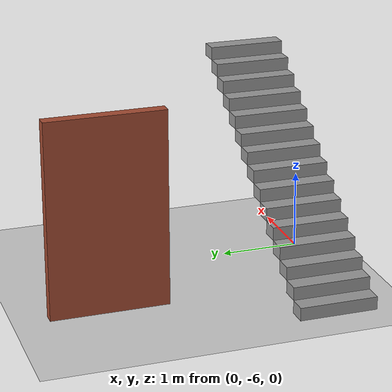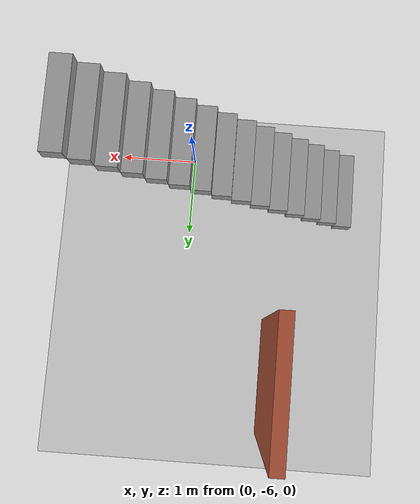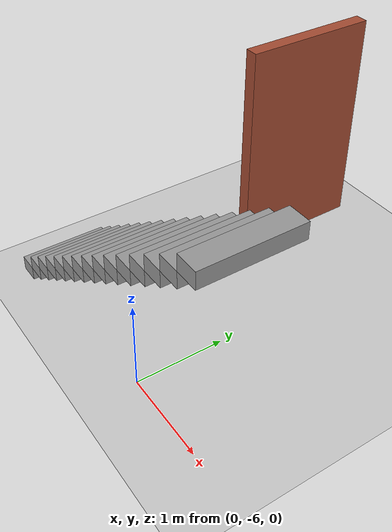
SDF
<sdf version="1.7">
 <world name="default">
  <model name="ground_plane">
   <static>1</static>
   <link name="link">
    <collision name="collision">
     <geometry><plane><normal>0 0 1</normal><size>100 100</size></plane></geometry>
     <surface>
      <contact><collide_bitmask>65535</collide_bitmask></contact>
      <friction><ode><mu>100</mu><mu2>50</mu2></ode></friction>
     </surface>
    </collision>
    <visual name="visual">
     <cast_shadows>0</cast_shadows>
     <geometry><plane><normal>0 0 1</normal><size>100 100</size></plane></geometry>
     <material>
      <script><uri>file://media/materials/scripts/gazebo.material</uri><name>Gazebo/Grey</name></script>
     </material>
    </visual>
   </link>
  </model>
  <model name="test_building">
   <link name="Stairs_1">
    <visual name="Stairs_1_Visual_0">
     <pose>-2.06861 -5.70244 0.083333 0 -0 1.5708</pose>
     <geometry><box><size>1 0.233333 0.166667</size></box></geometry>
     <material>
      <script><uri>file://media/materials/scripts/gazebo.material</uri><name>Gazebo/Grey</name></script>
      <ambient>1 1 1 1</ambient>
     </material>
     <meta><layer>0</layer></meta>
    </visual>
    <collision name="Stairs_1_Collision_0">
     <geometry><box><size>1 0.233333 0.166667</size></box></geometry>
     <pose>-2.06861 -5.70244 0.083333 0 -0 1.5708</pose>
    </collision>
    <visual name="Stairs_1_Visual_1">
     <pose>-1.83528 -5.70244 0.25 0 -0 1.5708</pose>
     <geometry><box><size>1 0.233333 0.166667</size></box></geometry>
     <material>
      <script><uri>file://media/materials/scripts/gazebo.material</uri><name>Gazebo/Grey</name></script>
      <ambient>1 1 1 1</ambient>
     </material>
     <meta><layer>0</layer></meta>
    </visual>
    <collision name="Stairs_1_Collision_1">
     <geometry><box><size>1 0.233333 0.166667</size></box></geometry>
     <pose>-1.83528 -5.70244 0.25 0 -0 1.5708</pose>
    </collision>
    <visual name="Stairs_1_Visual_2">
     <pose>-1.60195 -5.70244 0.416667 0 -0 1.5708</pose>
     <geometry><box><size>1 0.233333 0.166667</size></box></geometry>
     <material>
      <script><uri>file://media/materials/scripts/gazebo.material</uri><name>Gazebo/Grey</name></script>
      <ambient>1 1 1 1</ambient>
     </material>
     <meta><layer>0</layer></meta>
    </visual>
    <collision name="Stairs_1_Collision_2">
     <geometry><box><size>1 0.233333 0.166667</size></box></geometry>
     <pose>-1.60195 -5.70244 0.416667 0 -0 1.5708</pose>
    </collision>
    <visual name="Stairs_1_Visual_3">
     <pose>-1.36861 -5.70244 0.583333 0 -0 1.5708</pose>
     <geometry><box><size>1 0.233333 0.166667</size></box></geometry>
     <material>
      <script><uri>file://media/materials/scripts/gazebo.material</uri><name>Gazebo/Grey</name></script>
      <ambient>1 1 1 1</ambient>
     </material>
     <meta><layer>0</layer></meta>
    </visual>
    <collision name="Stairs_1_Collision_3">
     <geometry><box><size>1 0.233333 0.166667</size></box></geometry>
     <pose>-1.36861 -5.70244 0.583333 0 -0 1.5708</pose>
    </collision>
    <visual name="Stairs_1_Visual_4">
     <pose>-1.13528 -5.70244 0.75 0 -0 1.5708</pose>
     <geometry><box><size>1 0.233333 0.166667</size></box></geometry>
     <material>
      <script><uri>file://media/materials/scripts/gazebo.material</uri><name>Gazebo/Grey</name></script>
      <ambient>1 1 1 1</ambient>
     </material>
     <meta><layer>0</layer></meta>
    </visual>
    <collision name="Stairs_1_Collision_4">
     <geometry><box><size>1 0.233333 0.166667</size></box></geometry>
     <pose>-1.13528 -5.70244 0.75 0 -0 1.5708</pose>
    </collision>
    <visual name="Stairs_1_Visual_5">
     <pose>-0.901948 -5.70244 0.916667 0 -0 1.5708</pose>
     <geometry><box><size>1 0.233333 0.166667</size></box></geometry>
     <material>
      <script><uri>file://media/materials/scripts/gazebo.material</uri><name>Gazebo/Grey</name></script>
      <ambient>1 1 1 1</ambient>
     </material>
     <meta><layer>0</layer></meta>
    </visual>
    <collision name="Stairs_1_Collision_5">
     <geometry><box><size>1 0.233333 0.166667</size></box></geometry>
     <pose>-0.901948 -5.70244 0.916667 0 -0 1.5708</pose>
    </collision>
    <visual name="Stairs_1_Visual_6">
     <pose>-0.668615 -5.70244 1.08333 0 -0 1.5708</pose>
     <geometry><box><size>1 0.233333 0.166667</size></box></geometry>
     <material>
      <script><uri>file://media/materials/scripts/gazebo.material</uri><name>Gazebo/Grey</name></script>
      <ambient>1 1 1 1</ambient>
     </material>
     <meta><layer>0</layer></meta>
    </visual>
    <collision name="Stairs_1_Collision_6">
     <geometry><box><size>1 0.233333 0.166667</size></box></geometry>
     <pose>-0.668615 -5.70244 1.08333 0 -0 1.5708</pose>
    </collision>
    <visual name="Stairs_1_Visual_7">
     <pose>-0.435281 -5.70244 1.25 0 -0 1.5708</pose>
     <geometry><box><size>1 0.233333 0.166667</size></box></geometry>
     <material>
      <script><uri>file://media/materials/scripts/gazebo.material</uri><name>Gazebo/Grey</name></script>
      <ambient>1 1 1 1</ambient>
     </material>
     <meta><layer>0</layer></meta>
    </visual>
    <collision name="Stairs_1_Collision_7">
     <geometry><box><size>1 0.233333 0.166667</size></box></geometry>
     <pose>-0.435281 -5.70244 1.25 0 -0 1.5708</pose>
    </collision>
    <visual name="Stairs_1_Visual_8">
     <pose>-0.201947 -5.70244 1.41667 0 -0 1.5708</pose>
     <geometry><box><size>1 0.233333 0.166667</size></box></geometry>
     <material>
      <script><uri>file://media/materials/scripts/gazebo.material</uri><name>Gazebo/Grey</name></script>
      <ambient>1 1 1 1</ambient>
     </material>
     <meta><layer>0</layer></meta>
    </visual>
    <collision name="Stairs_1_Collision_8">
     <geometry><box><size>1 0.233333 0.166667</size></box></geometry>
     <pose>-0.201947 -5.70244 1.41667 0 -0 1.5708</pose>
    </collision>
    <visual name="Stairs_1_Visual_9">
     <pose>0.031386 -5.70244 1.58333 0 -0 1.5708</pose>
     <geometry><box><size>1 0.233333 0.166667</size></box></geometry>
     <material>
      <script><uri>file://media/materials/scripts/gazebo.material</uri><name>Gazebo/Grey</name></script>
      <ambient>1 1 1 1</ambient>
     </material>
     <meta><layer>0</layer></meta>
    </visual>
    <collision name="Stairs_1_Collision_9">
     <geometry><box><size>1 0.233333 0.166667</size></box></geometry>
     <pose>0.031386 -5.70244 1.58333 0 -0 1.5708</pose>
    </collision>
    <visual name="Stairs_1_Visual_10">
     <pose>0.264719 -5.70244 1.75 0 -0 1.5708</pose>
     <geometry><box><size>1 0.233333 0.166667</size></box></geometry>
     <material>
      <script><uri>file://media/materials/scripts/gazebo.material</uri><name>Gazebo/Grey</name></script>
      <ambient>1 1 1 1</ambient>
     </material>
     <meta><layer>0</layer></meta>
    </visual>
    <collision name="Stairs_1_Collision_10">
     <geometry><box><size>1 0.233333 0.166667</size></box></geometry>
     <pose>0.264719 -5.70244 1.75 0 -0 1.5708</pose>
    </collision>
    <visual name="Stairs_1_Visual_11">
     <pose>0.498052 -5.70244 1.91667 0 -0 1.5708</pose>
     <geometry><box><size>1 0.233333 0.166667</size></box></geometry>
     <material>
      <script><uri>file://media/materials/scripts/gazebo.material</uri><name>Gazebo/Grey</name></script>
      <ambient>1 1 1 1</ambient>
     </material>
     <meta><layer>0</layer></meta>
    </visual>
    <collision name="Stairs_1_Collision_11">
     <geometry><box><size>1 0.233333 0.166667</size></box></geometry>
     <pose>0.498052 -5.70244 1.91667 0 -0 1.5708</pose>
    </collision>
    <visual name="Stairs_1_Visual_12">
     <pose>0.731386 -5.70244 2.08333 0 -0 1.5708</pose>
     <geometry><box><size>1 0.233333 0.166667</size></box></geometry>
     <material>
      <script><uri>file://media/materials/scripts/gazebo.material</uri><name>Gazebo/Grey</name></script>
      <ambient>1 1 1 1</ambient>
     </material>
     <meta><layer>0</layer></meta>
    </visual>
    <collision name="Stairs_1_Collision_12">
     <geometry><box><size>1 0.233333 0.166667</size></box></geometry>
     <pose>0.731386 -5.70244 2.08333 0 -0 1.5708</pose>
    </collision>
    <visual name="Stairs_1_Visual_13">
     <pose>0.964719 -5.70244 2.25 0 -0 1.5708</pose>
     <geometry><box><size>1 0.233333 0.166667</size></box></geometry>
     <material>
      <script><uri>file://media/materials/scripts/gazebo.material</uri><name>Gazebo/Grey</name></script>
      <ambient>1 1 1 1</ambient>
     </material>
     <meta><layer>0</layer></meta>
    </visual>
    <collision name="Stairs_1_Collision_13">
     <geometry><box><size>1 0.233333 0.166667</size></box></geometry>
     <pose>0.964719 -5.70244 2.25 0 -0 1.5708</pose>
    </collision>
    <visual name="Stairs_1_Visual_14">
     <pose>1.19805 -5.70244 2.41667 0 -0 1.5708</pose>
     <geometry><box><size>1 0.233333 0.166667</size></box></geometry>
     <material>
      <script><uri>file://media/materials/scripts/gazebo.material</uri><name>Gazebo/Grey</name></script>
      <ambient>1 1 1 1</ambient>
     </material>
     <meta><layer>0</layer></meta>
    </visual>
    <collision name="Stairs_1_Collision_14">
     <geometry><box><size>1 0.233333 0.166667</size></box></geometry>
     <pose>1.19805 -5.70244 2.41667 0 -0 1.5708</pose>
    </collision>
   </link>
   <link name="Wall_159">
    <collision name="Wall_159_Collision">
     <geometry><box><size>1.5 0.15 2.5</size></box></geometry>
     <pose>0 0 1.25 0 -0 0</pose>
    </collision>
    <visual name="Wall_159_Visual">
     <pose>0 0 1.25 0 -0 0</pose>
     <geometry><box><size>1.5 0.15 2.5</size></box></geometry>
     <material>
      <script><uri>file://media/materials/scripts/gazebo.material</uri><name>Gazebo/Bricks</name></script>
      <ambient>1 1 1 1</ambient>
     </material>
     <meta><layer>0</layer></meta>
    </visual>
    <pose>-1.15 -3.125 0 0 -0 1.5708</pose>
   </link>
   <static>1</static>
  </model>
 </world>
</sdf>
